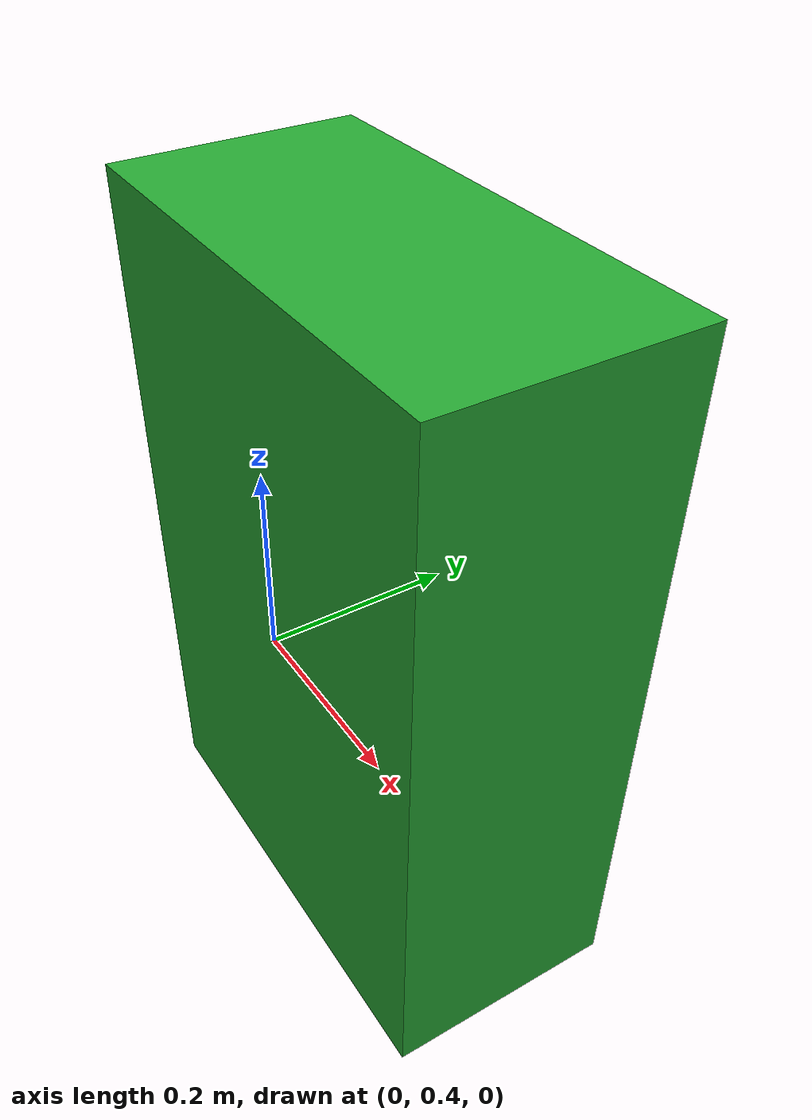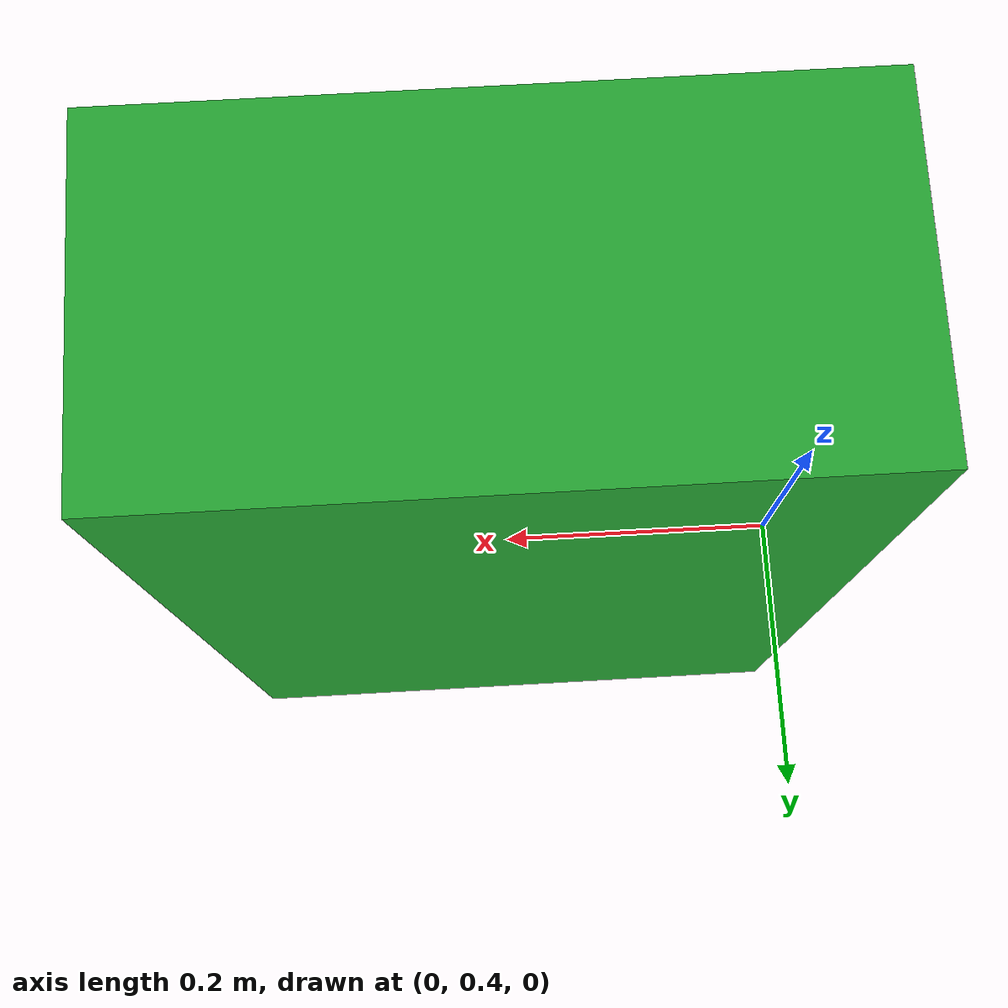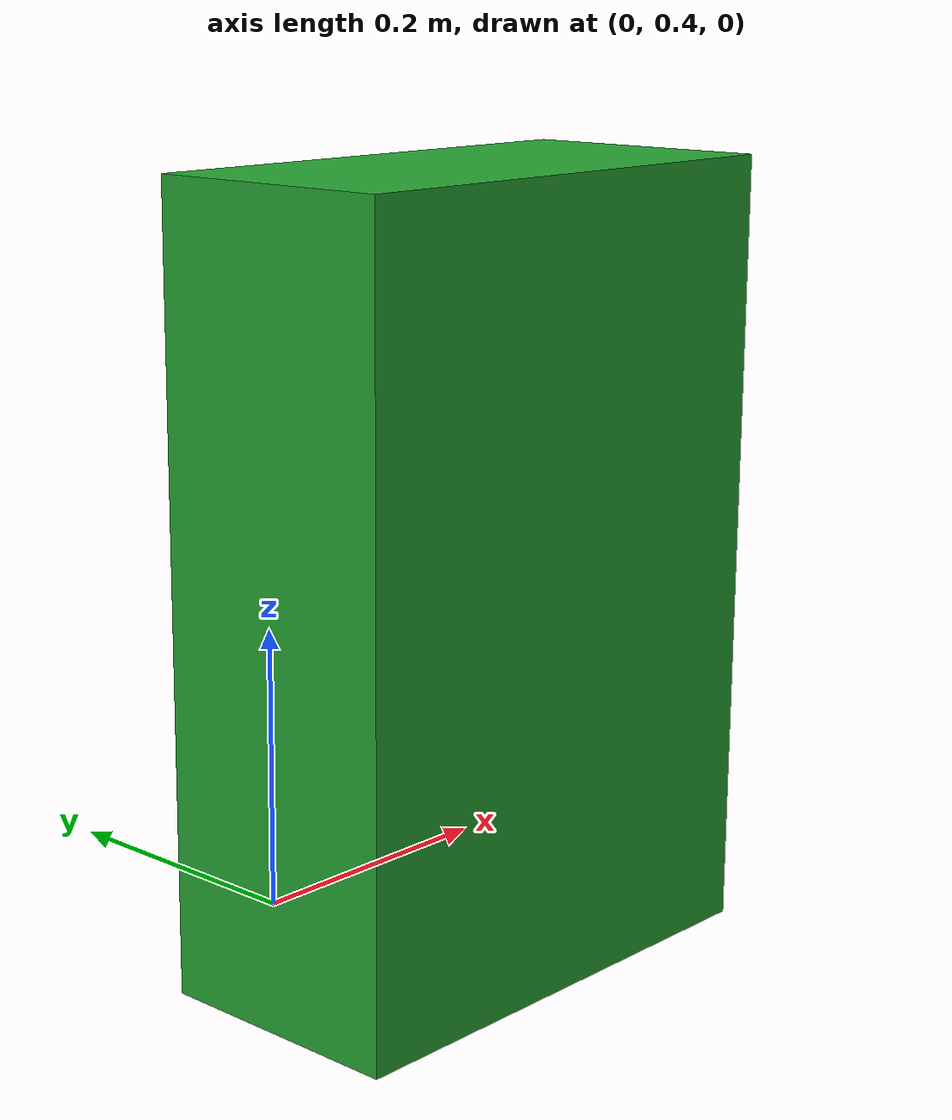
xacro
<robot name="table2">
  <link name="table2">
    <inertial>
      <origin xyz="0.2 0.4 0.0" />
      <mass value="1.0" />
      <inertia  ixx="1.0" ixy="0.0"  ixz="0.0"  iyy="100.0"  iyz="0.0"  izz="1.0" />
    </inertial>
    <visual>
      <!--origin xyz="0 0.5 0.2"/-->
      <origin xyz="0.2 0.4 0.2"/>
      <geometry>
        <box size="0.4 0.2 0.6" />
      </geometry>
    </visual>
    <collision>
      <origin xyz="0.2 0.4 0.2"/>
      <geometry>
        <box size="0.4 0.2 0.6" />
      </geometry>
    </collision>
  </link>
  <gazebo reference="table2">
    <material>Gazebo/Green</material>
  </gazebo>
</robot>
